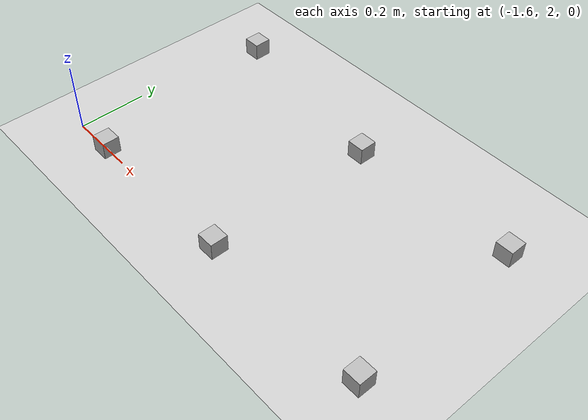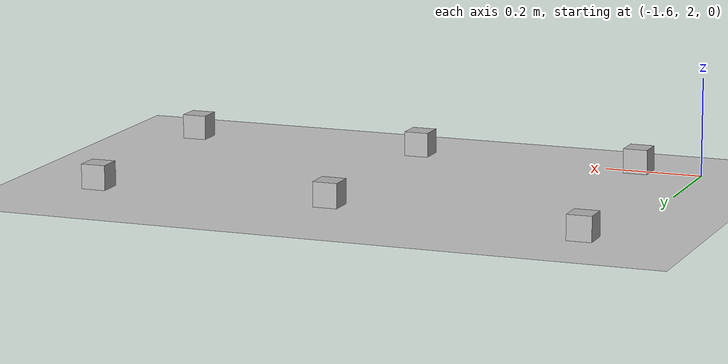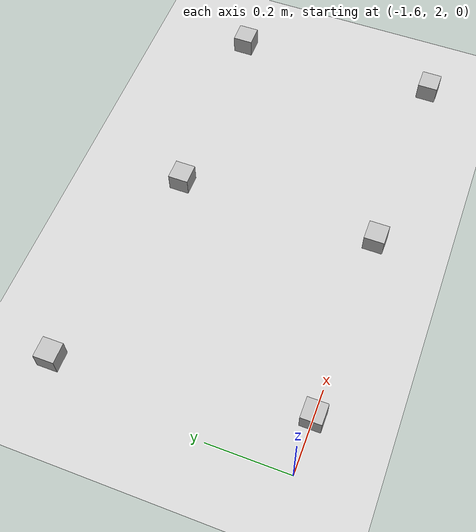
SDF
<sdf version="1.4">
 <world name="default">
  <model name="ground_plane">
   <static>1</static>
   <link name="link">
    <collision name="collision">
     <geometry><plane><normal>0 0 1</normal><size>100 100</size></plane></geometry>
     <surface><friction><ode><mu>100</mu><mu2>50</mu2></ode></friction></surface>
    </collision>
    <visual name="visual">
     <cast_shadows>0</cast_shadows>
     <geometry><plane><normal>0 0 1</normal><size>100 100</size></plane></geometry>
     <material>
      <script><uri>file://media/materials/scripts/gazebo.material</uri><name>Gazebo/Grey</name></script>
     </material>
    </visual>
    <velocity_decay><linear>0</linear><angular>0</angular></velocity_decay>
   </link>
  </model>
  <model name="at0">
   <static>1</static>
   <link name="link">
    <pose>0 0 0.025 0 -0 0</pose>
    <inertial>
     <mass>0.1</mass>
     <inertia><ixx>4e-05</ixx><ixy>0</ixy><ixz>0</ixz><iyy>4e-05</iyy><iyz>0</iyz><izz>4e-05</izz></inertia>
    </inertial>
    <visual name="visual">
     <transparency>0.1</transparency>
     <geometry><box><size>0.05 0.05 0.05</size></box></geometry>
     <material>
      <script>
       <uri>model://at0/materials/scripts</uri>
       <uri>model://at0/materials/textures</uri>
       <name>at0/Diffuse</name>
      </script>
     </material>
    </visual>
    <collision name="collision">
     <pose>0 0 -0.0125 0 -0 0</pose>
     <geometry><box><size>0.05 0.05 0.025</size></box></geometry>
     <surface><friction><ode><mu>0.8</mu><mu2>0.7</mu2></ode></friction></surface>
    </collision>
    <velocity_decay><linear>0</linear><angular>0</angular></velocity_decay>
   </link>
   <pose>-1.54043 2.592 0 0 -0 0</pose>
  </model>
  <model name="at0_5">
   <static>1</static>
   <link name="link">
    <pose>0 0 0.025 0 -0 0</pose>
    <inertial>
     <mass>0.1</mass>
     <inertia><ixx>4e-05</ixx><ixy>0</ixy><ixz>0</ixz><iyy>4e-05</iyy><iyz>0</iyz><izz>4e-05</izz></inertia>
    </inertial>
    <visual name="visual">
     <transparency>0.1</transparency>
     <geometry><box><size>0.05 0.05 0.05</size></box></geometry>
     <material>
      <script>
       <uri>model://at0/materials/scripts</uri>
       <uri>model://at0/materials/textures</uri>
       <name>at0/Diffuse</name>
      </script>
     </material>
    </visual>
    <collision name="collision">
     <pose>0 0 -0.0125 0 -0 0</pose>
     <geometry><box><size>0.05 0.05 0.025</size></box></geometry>
     <surface><friction><ode><mu>0.8</mu><mu2>0.7</mu2></ode></friction></surface>
    </collision>
    <velocity_decay><linear>0</linear><angular>0</angular></velocity_decay>
   </link>
   <pose>-1 2 0 0 -0 0</pose>
  </model>
  <model name="at0_6">
   <static>1</static>
   <link name="link">
    <pose>0 0 0.025 0 -0 0</pose>
    <inertial>
     <mass>0.1</mass>
     <inertia><ixx>4e-05</ixx><ixy>0</ixy><ixz>0</ixz><iyy>4e-05</iyy><iyz>0</iyz><izz>4e-05</izz></inertia>
    </inertial>
    <visual name="visual">
     <transparency>0.1</transparency>
     <geometry><box><size>0.05 0.05 0.05</size></box></geometry>
     <material>
      <script>
       <uri>model://at0/materials/scripts</uri>
       <uri>model://at0/materials/textures</uri>
       <name>at0/Diffuse</name>
      </script>
     </material>
    </visual>
    <collision name="collision">
     <pose>0 0 -0.0125 0 -0 0</pose>
     <geometry><box><size>0.05 0.05 0.025</size></box></geometry>
     <surface><friction><ode><mu>0.8</mu><mu2>0.7</mu2></ode></friction></surface>
    </collision>
    <velocity_decay><linear>0</linear><angular>0</angular></velocity_decay>
   </link>
   <pose>-1 2.50258 0 0 -0 0</pose>
  </model>
  <model name="at0_7">
   <static>1</static>
   <link name="link">
    <pose>0 0 0.025 0 -0 0</pose>
    <inertial>
     <mass>0.1</mass>
     <inertia><ixx>4e-05</ixx><ixy>0</ixy><ixz>0</ixz><iyy>4e-05</iyy><iyz>0</iyz><izz>4e-05</izz></inertia>
    </inertial>
    <visual name="visual">
     <transparency>0.1</transparency>
     <geometry><box><size>0.05 0.05 0.05</size></box></geometry>
     <material>
      <script>
       <uri>model://at0/materials/scripts</uri>
       <uri>model://at0/materials/textures</uri>
       <name>at0/Diffuse</name>
      </script>
     </material>
    </visual>
    <collision name="collision">
     <pose>0 0 -0.0125 0 -0 0</pose>
     <geometry><box><size>0.05 0.05 0.025</size></box></geometry>
     <surface><friction><ode><mu>0.8</mu><mu2>0.7</mu2></ode></friction></surface>
    </collision>
    <velocity_decay><linear>0</linear><angular>0</angular></velocity_decay>
   </link>
   <pose>-1.46869 2 0 0 -0 0</pose>
  </model>
  <model name="at0_11">
   <static>1</static>
   <link name="link">
    <pose>0 0 0.025 0 -0 0</pose>
    <inertial>
     <mass>0.1</mass>
     <inertia><ixx>4e-05</ixx><ixy>0</ixy><ixz>0</ixz><iyy>4e-05</iyy><iyz>0</iyz><izz>4e-05</izz></inertia>
    </inertial>
    <visual name="visual">
     <transparency>0.1</transparency>
     <geometry><box><size>0.05 0.05 0.05</size></box></geometry>
     <material>
      <script>
       <uri>model://at0/materials/scripts</uri>
       <uri>model://at0/materials/textures</uri>
       <name>at0/Diffuse</name>
      </script>
     </material>
    </visual>
    <collision name="collision">
     <pose>0 0 -0.0125 0 -0 0</pose>
     <geometry><box><size>0.05 0.05 0.025</size></box></geometry>
     <surface><friction><ode><mu>0.8</mu><mu2>0.7</mu2></ode></friction></surface>
    </collision>
    <velocity_decay><linear>0</linear><angular>0</angular></velocity_decay>
   </link>
   <pose>-0.501759 2 0 0 -0 0</pose>
  </model>
  <model name="at0_12">
   <static>1</static>
   <link name="link">
    <pose>0 0 0.025 0 -0 0</pose>
    <inertial>
     <mass>0.1</mass>
     <inertia><ixx>4e-05</ixx><ixy>0</ixy><ixz>0</ixz><iyy>4e-05</iyy><iyz>0</iyz><izz>4e-05</izz></inertia>
    </inertial>
    <visual name="visual">
     <transparency>0.1</transparency>
     <geometry><box><size>0.05 0.05 0.05</size></box></geometry>
     <material>
      <script>
       <uri>model://at0/materials/scripts</uri>
       <uri>model://at0/materials/textures</uri>
       <name>at0/Diffuse</name>
      </script>
     </material>
    </visual>
    <collision name="collision">
     <pose>0 0 -0.0125 0 -0 0</pose>
     <geometry><box><size>0.05 0.05 0.025</size></box></geometry>
     <surface><friction><ode><mu>0.8</mu><mu2>0.7</mu2></ode></friction></surface>
    </collision>
    <velocity_decay><linear>0</linear><angular>0</angular></velocity_decay>
   </link>
   <pose>-0.514878 2.51621 0 0 -0 0</pose>
  </model>
 </world>
</sdf>
